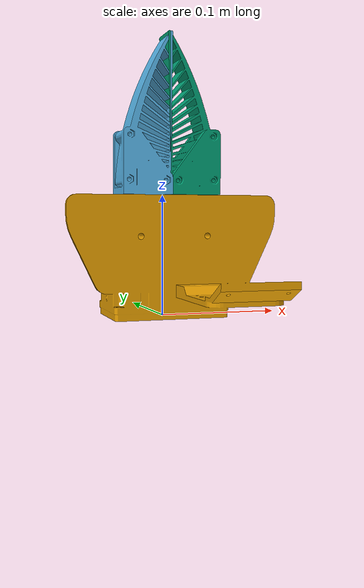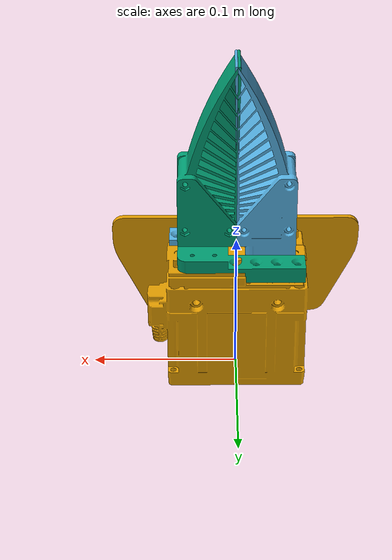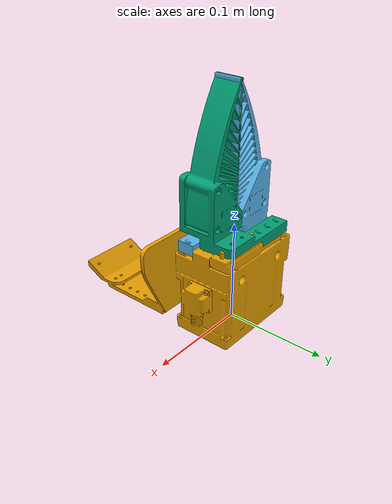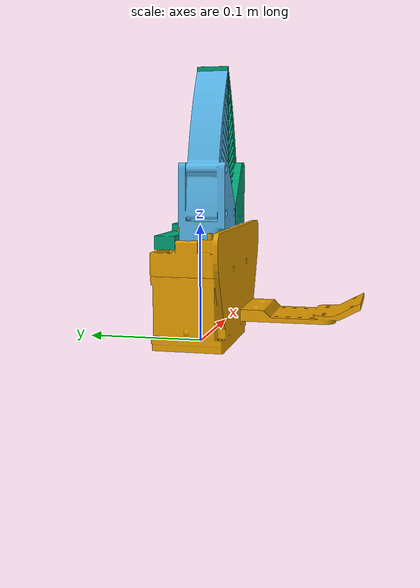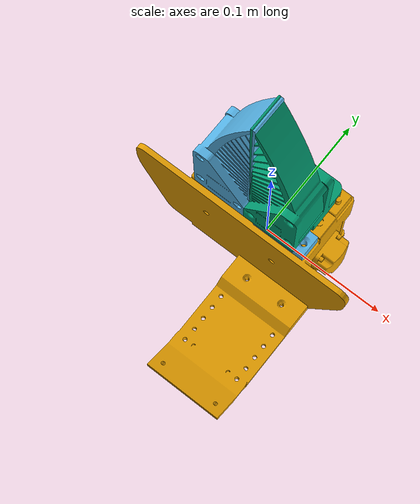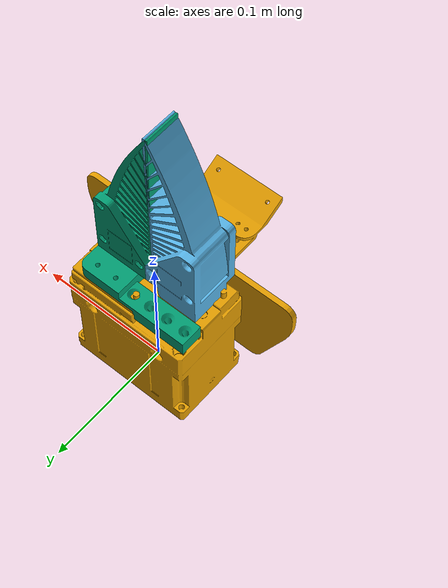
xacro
<?xml version="1.0"?>
<robot xmlns:xacro="http://ros.org/wiki/xacro" name="gripper">

    <link name="hand_link">
      <inertial>
        <origin xyz="0 0 0" rpy="0 0 0" />
        <mass value="1.0" />
        <inertia ixx="0.001" iyy="0.001" izz="0.001" ixy="0.0" iyz="-0.0" ixz="-0.0" />
      </inertial>
      <visual>
        <origin xyz="0 0 0" rpy="0 0 0 " />
        <geometry>
          <mesh filename="package://umi_description/meshes/gripper_realsense/hand.dae"/>
        </geometry>
      </visual>
      <collision>
        <origin xyz="0 0 0" rpy="0 0 0" />
        <geometry>
          <mesh filename="package://umi_description/meshes/gripper_realsense/hand.STL" />
        </geometry>
      </collision>
    </link>

    <link name="left_finger_link">
      <inertial>
        <origin xyz="0 0 0" rpy="0 0 0" />
        <mass value="0.1" />
        <inertia ixx="0.0001" iyy="0.0001" izz="0.0001" ixy="0.0" iyz="-0.0" ixz="-0.0" />
      </inertial>
      <visual>
        <origin xyz="0 0 0" rpy="0 0 0 " />
        <geometry>
          <mesh filename="package://umi_description/meshes/left_finger.dae"/>
        </geometry>
      </visual>
      <collision>
        <origin xyz="0 0 0" rpy="0 0 0" />
        <geometry>
          <mesh filename="package://umi_description/meshes/left_finger.STL" />
        </geometry>
      </collision>
    </link>

    <link name="right_finger_link">
      <inertial>
        <origin xyz="0 0 0" rpy="0 0 0" />
        <mass value="0.1" />
        <inertia ixx="0.0001" iyy="0.0001" izz="0.0001" ixy="0.0" iyz="-0.0" ixz="-0.0" />
      </inertial>
      <visual>
        <origin xyz="0 0 0" rpy="0 0 0 " />
        <geometry>
          <mesh filename="package://umi_description/meshes/right_finger.dae"/>
        </geometry>
      </visual>
      <collision>
        <origin xyz="0 0 0" rpy="0 0 0" />
        <geometry>
          <mesh filename="package://umi_description/meshes/right_finger.STL" />
        </geometry>
      </collision>
    </link>

    <joint name="left_finger_joint" type="prismatic">
        <parent link="hand_link" />
        <child link="left_finger_link" />
        <origin xyz="0 -0.01105 0.10" rpy="0 0 0" />
        <axis xyz="-1 0 0"/>
        <limit effort="100" lower="0.0" upper="0.04" velocity="0.2"/>
        <dynamics damping="0.3"/>
    </joint>

    <joint name="right_finger_joint" type="prismatic">
        <parent link="hand_link" />
        <child link="right_finger_link" />
        <origin xyz="0 -0.01105 0.10" rpy="0 0 0" />
        <limit effort="100.0" lower="0" upper="0.04" velocity="0.2"/>
        <dynamics damping="0.3"/>
    </joint>

    <link name="tool_link" />
    <joint name="tool_link_2_umi_link" type="fixed">
        <parent link="hand_link" />
        <child link="tool_link" />
        <origin rpy="0 0 0" xyz="0 -0.01105 0.235" />
    </joint>

</robot>
